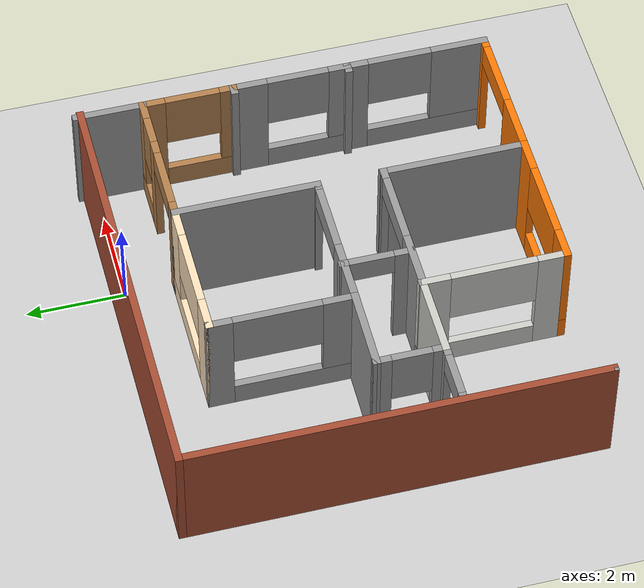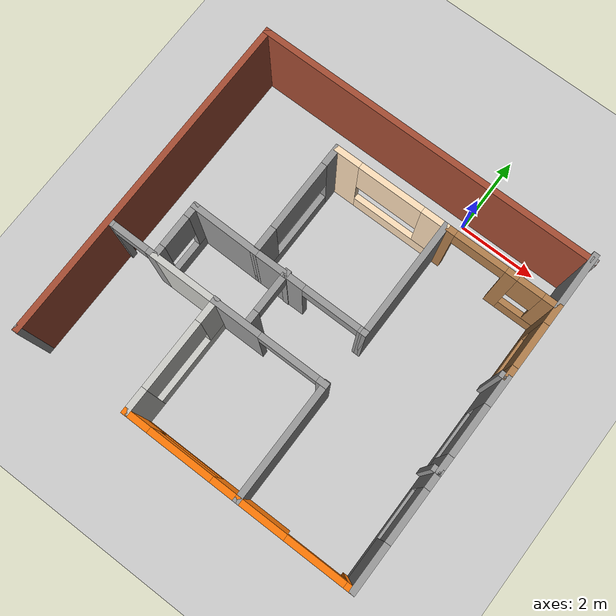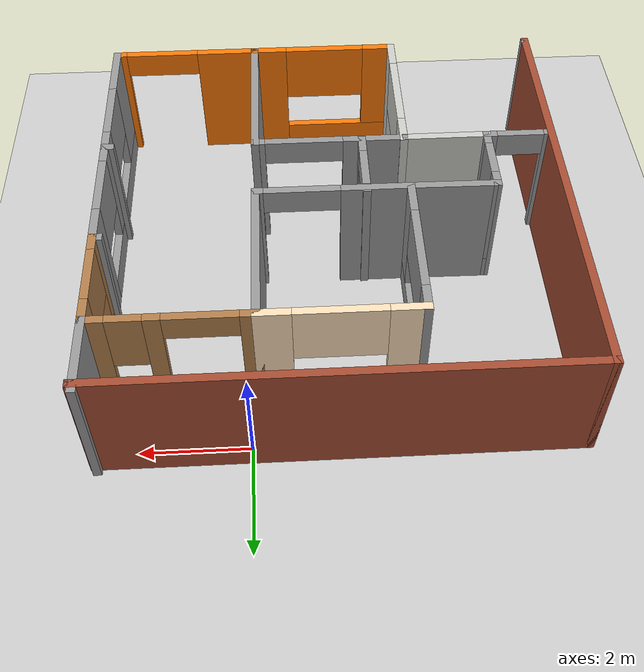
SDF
<sdf version="1.6">
 <world name="default">
  <model name="ground_plane">
   <static>1</static>
   <link name="link">
    <collision name="collision">
     <geometry><plane><normal>0 0 1</normal><size>100 100</size></plane></geometry>
     <surface>
      <contact><collide_bitmask>65535</collide_bitmask></contact>
      <friction><ode><mu>100</mu><mu2>50</mu2></ode></friction>
     </surface>
    </collision>
    <visual name="visual">
     <cast_shadows>0</cast_shadows>
     <geometry><plane><normal>0 0 1</normal><size>100 100</size></plane></geometry>
     <material>
      <script><uri>file://media/materials/scripts/gazebo.material</uri><name>Gazebo/Grey</name></script>
     </material>
    </visual>
   </link>
  </model>
  <model name="MyHome">
   <pose>-1.58 -3.915 0 0 -0 0</pose>
   <link name="Wall_0">
    <pose>-0.025 2.875 0 0 -0 0</pose>
    <visual name="Wall_0_Visual_0">
     <pose>-1.14611 0 1.25 0 -0 0</pose>
     <geometry><box><size>0.707769 0.15 2.5</size></box></geometry>
     <material>
      <script><uri>file://media/materials/scripts/gazebo.material</uri><name>Gazebo/Grey</name></script>
      <ambient>1 0.878431 0.733333 1</ambient>
     </material>
     <meta><layer>0</layer></meta>
    </visual>
    <collision name="Wall_0_Collision_0">
     <geometry><box><size>0.707769 0.15 2.5</size></box></geometry>
     <pose>-1.14611 0 1.25 0 -0 0</pose>
    </collision>
    <visual name="Wall_0_Visual_1">
     <pose>0.353885 0 0.25 0 -0 0</pose>
     <geometry><box><size>2.29223 0.15 0.5</size></box></geometry>
     <material>
      <script><uri>file://media/materials/scripts/gazebo.material</uri><name>Gazebo/Grey</name></script>
      <ambient>1 0.878431 0.733333 1</ambient>
     </material>
     <meta><layer>0</layer></meta>
    </visual>
    <collision name="Wall_0_Collision_1">
     <geometry><box><size>2.29223 0.15 0.5</size></box></geometry>
     <pose>0.353885 0 0.25 0 -0 0</pose>
    </collision>
    <visual name="Wall_0_Visual_2">
     <pose>1.16841 0 1.5 0 -0 0</pose>
     <geometry><box><size>0.663189 0.15 2</size></box></geometry>
     <material>
      <script><uri>file://media/materials/scripts/gazebo.material</uri><name>Gazebo/Grey</name></script>
      <ambient>1 0.878431 0.733333 1</ambient>
     </material>
     <meta><layer>0</layer></meta>
    </visual>
    <collision name="Wall_0_Collision_2">
     <geometry><box><size>0.663189 0.15 2</size></box></geometry>
     <pose>1.16841 0 1.5 0 -0 0</pose>
    </collision>
    <visual name="Wall_0_Visual_3">
     <pose>0.02229 0 1.9 0 -0 0</pose>
     <geometry><box><size>1.62904 0.15 1.2</size></box></geometry>
     <material>
      <script><uri>file://media/materials/scripts/gazebo.material</uri><name>Gazebo/Grey</name></script>
      <ambient>1 0.878431 0.733333 1</ambient>
     </material>
     <meta><layer>0</layer></meta>
    </visual>
    <collision name="Wall_0_Collision_3">
     <geometry><box><size>1.62904 0.15 1.2</size></box></geometry>
     <pose>0.02229 0 1.9 0 -0 0</pose>
    </collision>
   </link>
   <link name="Wall_11">
    <collision name="Wall_11_Collision">
     <geometry><box><size>0.25 0.15 2.5</size></box></geometry>
     <pose>0 0 1.25 0 -0 0</pose>
    </collision>
    <visual name="Wall_11_Visual">
     <pose>0 0 1.25 0 -0 0</pose>
     <geometry><box><size>0.25 0.15 2.5</size></box></geometry>
     <material>
      <script><uri>file://media/materials/scripts/gazebo.material</uri><name>Gazebo/Grey</name></script>
      <ambient>1 1 1 1</ambient>
     </material>
     <meta><layer>0</layer></meta>
    </visual>
    <pose>4.2 1.025 0 0 -0 3.14159</pose>
   </link>
   <link name="Wall_13">
    <pose>4.25 -0.15 0 0 0 -1.5708</pose>
    <visual name="Wall_13_Visual_0">
     <pose>-0.866536 0 1.25 0 -0 0</pose>
     <geometry><box><size>0.766927 0.15 2.5</size></box></geometry>
     <material>
      <script><uri>file://media/materials/scripts/gazebo.material</uri><name>Gazebo/Grey</name></script>
      <ambient>1 1 1 1</ambient>
     </material>
     <meta><layer>0</layer></meta>
    </visual>
    <collision name="Wall_13_Collision_0">
     <geometry><box><size>0.766927 0.15 2.5</size></box></geometry>
     <pose>-0.866536 0 1.25 0 -0 0</pose>
    </collision>
    <visual name="Wall_13_Visual_1">
     <pose>0.383464 0 0.25 0 -0 0</pose>
     <geometry><box><size>1.73307 0.15 0.5</size></box></geometry>
     <material>
      <script><uri>file://media/materials/scripts/gazebo.material</uri><name>Gazebo/Grey</name></script>
      <ambient>1 1 1 1</ambient>
     </material>
     <meta><layer>0</layer></meta>
    </visual>
    <collision name="Wall_13_Collision_1">
     <geometry><box><size>1.73307 0.15 0.5</size></box></geometry>
     <pose>0.383464 0 0.25 0 -0 0</pose>
    </collision>
    <visual name="Wall_13_Visual_2">
     <pose>1.01502 0 1.5 0 -0 0</pose>
     <geometry><box><size>0.469953 0.15 2</size></box></geometry>
     <material>
      <script><uri>file://media/materials/scripts/gazebo.material</uri><name>Gazebo/Grey</name></script>
      <ambient>1 1 1 1</ambient>
     </material>
     <meta><layer>0</layer></meta>
    </visual>
    <collision name="Wall_13_Collision_2">
     <geometry><box><size>0.469953 0.15 2</size></box></geometry>
     <pose>1.01502 0 1.5 0 -0 0</pose>
    </collision>
    <visual name="Wall_13_Visual_3">
     <pose>0.148487 0 1.9 0 -0 0</pose>
     <geometry><box><size>1.26312 0.15 1.2</size></box></geometry>
     <material>
      <script><uri>file://media/materials/scripts/gazebo.material</uri><name>Gazebo/Grey</name></script>
      <ambient>1 1 1 1</ambient>
     </material>
     <meta><layer>0</layer></meta>
    </visual>
    <collision name="Wall_13_Collision_3">
     <geometry><box><size>1.26312 0.15 1.2</size></box></geometry>
     <pose>0.148487 0 1.9 0 -0 0</pose>
    </collision>
   </link>
   <link name="Wall_14">
    <collision name="Wall_14_Collision">
     <geometry><box><size>0.25 0.15 2.5</size></box></geometry>
     <pose>0 0 1.25 0 -0 0</pose>
    </collision>
    <visual name="Wall_14_Visual">
     <pose>0 0 1.25 0 -0 0</pose>
     <geometry><box><size>0.25 0.15 2.5</size></box></geometry>
     <material>
      <script><uri>file://media/materials/scripts/gazebo.material</uri><name>Gazebo/Grey</name></script>
      <ambient>1 1 1 1</ambient>
     </material>
     <meta><layer>0</layer></meta>
    </visual>
    <pose>4.2 -1.325 0 0 -0 3.14159</pose>
   </link>
   <link name="Wall_16">
    <pose>4.25 -2.75 0 0 0 -1.5708</pose>
    <visual name="Wall_16_Visual_0">
     <pose>-1.24918 0 1.25 0 -0 0</pose>
     <geometry><box><size>0.501638 0.15 2.5</size></box></geometry>
     <material>
      <script><uri>file://media/materials/scripts/gazebo.material</uri><name>Gazebo/Grey</name></script>
      <ambient>1 1 1 1</ambient>
     </material>
     <meta><layer>0</layer></meta>
    </visual>
    <collision name="Wall_16_Collision_0">
     <geometry><box><size>0.501638 0.15 2.5</size></box></geometry>
     <pose>-1.24918 0 1.25 0 -0 0</pose>
    </collision>
    <visual name="Wall_16_Visual_1">
     <pose>0.250819 0 0.25 0 -0 0</pose>
     <geometry><box><size>2.49836 0.15 0.5</size></box></geometry>
     <material>
      <script><uri>file://media/materials/scripts/gazebo.material</uri><name>Gazebo/Grey</name></script>
      <ambient>1 1 1 1</ambient>
     </material>
     <meta><layer>0</layer></meta>
    </visual>
    <collision name="Wall_16_Collision_1">
     <geometry><box><size>2.49836 0.15 0.5</size></box></geometry>
     <pose>0.250819 0 0.25 0 -0 0</pose>
    </collision>
    <visual name="Wall_16_Visual_2">
     <pose>0.905819 0 1.5 0 -0 0</pose>
     <geometry><box><size>1.18836 0.15 2</size></box></geometry>
     <material>
      <script><uri>file://media/materials/scripts/gazebo.material</uri><name>Gazebo/Grey</name></script>
      <ambient>1 1 1 1</ambient>
     </material>
     <meta><layer>0</layer></meta>
    </visual>
    <collision name="Wall_16_Collision_2">
     <geometry><box><size>1.18836 0.15 2</size></box></geometry>
     <pose>0.905819 0 1.5 0 -0 0</pose>
    </collision>
    <visual name="Wall_16_Visual_3">
     <pose>-0.343362 0 1.9 0 -0 0</pose>
     <geometry><box><size>1.31 0.15 1.2</size></box></geometry>
     <material>
      <script><uri>file://media/materials/scripts/gazebo.material</uri><name>Gazebo/Grey</name></script>
      <ambient>1 1 1 1</ambient>
     </material>
     <meta><layer>0</layer></meta>
    </visual>
    <collision name="Wall_16_Collision_3">
     <geometry><box><size>1.31 0.15 1.2</size></box></geometry>
     <pose>-0.343362 0 1.9 0 -0 0</pose>
    </collision>
   </link>
   <link name="Wall_18">
    <pose>2.825 -4.175 0 0 -0 3.14159</pose>
    <visual name="Wall_18_Visual_0">
     <pose>-1.36366 0 1.25 0 -0 0</pose>
     <geometry><box><size>0.272669 0.15 2.5</size></box></geometry>
     <material>
      <script><uri>file://media/materials/scripts/gazebo.material</uri><name>Gazebo/Grey</name></script>
      <ambient>0.996078 0.47451 0.0196078 1</ambient>
     </material>
     <meta><layer>0</layer></meta>
    </visual>
    <collision name="Wall_18_Collision_0">
     <geometry><box><size>0.272669 0.15 2.5</size></box></geometry>
     <pose>-1.36366 0 1.25 0 -0 0</pose>
    </collision>
    <visual name="Wall_18_Visual_1">
     <pose>0.866335 0 1.25 0 -0 0</pose>
     <geometry><box><size>1.26733 0.15 2.5</size></box></geometry>
     <material>
      <script><uri>file://media/materials/scripts/gazebo.material</uri><name>Gazebo/Grey</name></script>
      <ambient>0.996078 0.47451 0.0196078 1</ambient>
     </material>
     <meta><layer>0</layer></meta>
    </visual>
    <collision name="Wall_18_Collision_1">
     <geometry><box><size>1.26733 0.15 2.5</size></box></geometry>
     <pose>0.866335 0 1.25 0 -0 0</pose>
    </collision>
    <visual name="Wall_18_Visual_2">
     <pose>-0.497331 0 2.25 0 -0 0</pose>
     <geometry><box><size>1.46 0.15 0.5</size></box></geometry>
     <material>
      <script><uri>file://media/materials/scripts/gazebo.material</uri><name>Gazebo/Grey</name></script>
      <ambient>0.996078 0.47451 0.0196078 1</ambient>
     </material>
     <meta><layer>0</layer></meta>
    </visual>
    <collision name="Wall_18_Collision_2">
     <geometry><box><size>1.46 0.15 0.5</size></box></geometry>
     <pose>-0.497331 0 2.25 0 -0 0</pose>
    </collision>
   </link>
   <link name="Wall_2">
    <pose>-1.45 1.45 0 0 0 -1.5708</pose>
    <visual name="Wall_2_Visual_0">
     <pose>-1.23642 0 1.25 0 -0 0</pose>
     <geometry><box><size>0.527169 0.15 2.5</size></box></geometry>
     <material>
      <script><uri>file://media/materials/scripts/gazebo.material</uri><name>Gazebo/Grey</name></script>
      <ambient>0.529412 0.529412 0.529412 1</ambient>
     </material>
     <meta><layer>0</layer></meta>
    </visual>
    <collision name="Wall_2_Collision_0">
     <geometry><box><size>0.527169 0.15 2.5</size></box></geometry>
     <pose>-1.23642 0 1.25 0 -0 0</pose>
    </collision>
    <visual name="Wall_2_Visual_1">
     <pose>0.263585 0 0.25 0 -0 0</pose>
     <geometry><box><size>2.47283 0.15 0.5</size></box></geometry>
     <material>
      <script><uri>file://media/materials/scripts/gazebo.material</uri><name>Gazebo/Grey</name></script>
      <ambient>0.529412 0.529412 0.529412 1</ambient>
     </material>
     <meta><layer>0</layer></meta>
    </visual>
    <collision name="Wall_2_Collision_1">
     <geometry><box><size>2.47283 0.15 0.5</size></box></geometry>
     <pose>0.263585 0 0.25 0 -0 0</pose>
    </collision>
    <visual name="Wall_2_Visual_2">
     <pose>1.14386 0 1.5 0 -0 0</pose>
     <geometry><box><size>0.712285 0.15 2</size></box></geometry>
     <material>
      <script><uri>file://media/materials/scripts/gazebo.material</uri><name>Gazebo/Grey</name></script>
      <ambient>0.529412 0.529412 0.529412 1</ambient>
     </material>
     <meta><layer>0</layer></meta>
    </visual>
    <collision name="Wall_2_Collision_2">
     <geometry><box><size>0.712285 0.15 2</size></box></geometry>
     <pose>1.14386 0 1.5 0 -0 0</pose>
    </collision>
    <visual name="Wall_2_Visual_3">
     <pose>-0.092558 0 1.9 0 -0 0</pose>
     <geometry><box><size>1.76055 0.15 1.2</size></box></geometry>
     <material>
      <script><uri>file://media/materials/scripts/gazebo.material</uri><name>Gazebo/Grey</name></script>
      <ambient>0.529412 0.529412 0.529412 1</ambient>
     </material>
     <meta><layer>0</layer></meta>
    </visual>
    <collision name="Wall_2_Collision_3">
     <geometry><box><size>1.76055 0.15 1.2</size></box></geometry>
     <pose>-0.092558 0 1.9 0 -0 0</pose>
    </collision>
   </link>
   <link name="Wall_20">
    <collision name="Wall_20_Collision">
     <geometry><box><size>0.15 0.15 2.5</size></box></geometry>
     <pose>0 0 1.25 0 -0 0</pose>
    </collision>
    <visual name="Wall_20_Visual">
     <pose>0 0 1.25 0 -0 0</pose>
     <geometry><box><size>0.15 0.15 2.5</size></box></geometry>
     <material>
      <script><uri>file://media/materials/scripts/gazebo.material</uri><name>Gazebo/Grey</name></script>
      <ambient>1 1 1 1</ambient>
     </material>
     <meta><layer>0</layer></meta>
    </visual>
    <pose>1.4 -4.175 0 0 -0 0</pose>
   </link>
   <link name="Wall_22">
    <pose>-0.025 -4.175 0 0 -0 3.14159</pose>
    <visual name="Wall_22_Visual_0">
     <pose>-1.13467 0 1.25 0 -0 0</pose>
     <geometry><box><size>0.73066 0.15 2.5</size></box></geometry>
     <material>
      <script><uri>file://media/materials/scripts/gazebo.material</uri><name>Gazebo/Grey</name></script>
      <ambient>0.996078 0.47451 0.0196078 1</ambient>
     </material>
     <meta><layer>0</layer></meta>
    </visual>
    <collision name="Wall_22_Collision_0">
     <geometry><box><size>0.73066 0.15 2.5</size></box></geometry>
     <pose>-1.13467 0 1.25 0 -0 0</pose>
    </collision>
    <visual name="Wall_22_Visual_1">
     <pose>0.36533 0 0.25 0 -0 0</pose>
     <geometry><box><size>2.26934 0.15 0.5</size></box></geometry>
     <material>
      <script><uri>file://media/materials/scripts/gazebo.material</uri><name>Gazebo/Grey</name></script>
      <ambient>0.996078 0.47451 0.0196078 1</ambient>
     </material>
     <meta><layer>0</layer></meta>
    </visual>
    <collision name="Wall_22_Collision_1">
     <geometry><box><size>2.26934 0.15 0.5</size></box></geometry>
     <pose>0.36533 0 0.25 0 -0 0</pose>
    </collision>
    <visual name="Wall_22_Visual_2">
     <pose>1.16533 0 1.5 0 -0 0</pose>
     <geometry><box><size>0.66934 0.15 2</size></box></geometry>
     <material>
      <script><uri>file://media/materials/scripts/gazebo.material</uri><name>Gazebo/Grey</name></script>
      <ambient>0.996078 0.47451 0.0196078 1</ambient>
     </material>
     <meta><layer>0</layer></meta>
    </visual>
    <collision name="Wall_22_Collision_2">
     <geometry><box><size>0.66934 0.15 2</size></box></geometry>
     <pose>1.16533 0 1.5 0 -0 0</pose>
    </collision>
    <visual name="Wall_22_Visual_3">
     <pose>0.03066 0 1.9 0 -0 0</pose>
     <geometry><box><size>1.6 0.15 1.2</size></box></geometry>
     <material>
      <script><uri>file://media/materials/scripts/gazebo.material</uri><name>Gazebo/Grey</name></script>
      <ambient>0.996078 0.47451 0.0196078 1</ambient>
     </material>
     <meta><layer>0</layer></meta>
    </visual>
    <collision name="Wall_22_Collision_3">
     <geometry><box><size>1.6 0.15 1.2</size></box></geometry>
     <pose>0.03066 0 1.9 0 -0 0</pose>
    </collision>
   </link>
   <link name="Wall_24">
    <pose>-1.45 -2.73479 0 0 -0 1.5708</pose>
    <visual name="Wall_24_Visual_0">
     <pose>-1.18374 0 1.25 0 -0 0</pose>
     <geometry><box><size>0.662934 0.15 2.5</size></box></geometry>
     <material>
      <script><uri>file://media/materials/scripts/gazebo.material</uri><name>Gazebo/CeilingTiled</name></script>
      <ambient>1 1 1 1</ambient>
     </material>
     <meta><layer>0</layer></meta>
    </visual>
    <collision name="Wall_24_Collision_0">
     <geometry><box><size>0.662934 0.15 2.5</size></box></geometry>
     <pose>-1.18374 0 1.25 0 -0 0</pose>
    </collision>
    <visual name="Wall_24_Visual_1">
     <pose>0.331467 0 0.25 0 -0 0</pose>
     <geometry><box><size>2.36748 0.15 0.5</size></box></geometry>
     <material>
      <script><uri>file://media/materials/scripts/gazebo.material</uri><name>Gazebo/CeilingTiled</name></script>
      <ambient>1 1 1 1</ambient>
     </material>
     <meta><layer>0</layer></meta>
    </visual>
    <collision name="Wall_24_Collision_1">
     <geometry><box><size>2.36748 0.15 0.5</size></box></geometry>
     <pose>0.331467 0 0.25 0 -0 0</pose>
    </collision>
    <visual name="Wall_24_Visual_2">
     <pose>1.19647 0 1.5 0 -0 0</pose>
     <geometry><box><size>0.637483 0.15 2</size></box></geometry>
     <material>
      <script><uri>file://media/materials/scripts/gazebo.material</uri><name>Gazebo/CeilingTiled</name></script>
      <ambient>1 1 1 1</ambient>
     </material>
     <meta><layer>0</layer></meta>
    </visual>
    <collision name="Wall_24_Collision_2">
     <geometry><box><size>0.637483 0.15 2</size></box></geometry>
     <pose>1.19647 0 1.5 0 -0 0</pose>
    </collision>
    <visual name="Wall_24_Visual_3">
     <pose>0.012725 0 1.9 0 -0 0</pose>
     <geometry><box><size>1.73 0.15 1.2</size></box></geometry>
     <material>
      <script><uri>file://media/materials/scripts/gazebo.material</uri><name>Gazebo/CeilingTiled</name></script>
      <ambient>1 1 1 1</ambient>
     </material>
     <meta><layer>0</layer></meta>
    </visual>
    <collision name="Wall_24_Collision_3">
     <geometry><box><size>1.73 0.15 1.2</size></box></geometry>
     <pose>0.012725 0 1.9 0 -0 0</pose>
    </collision>
   </link>
   <link name="Wall_25">
    <collision name="Wall_25_Collision">
     <geometry><box><size>0.15 0.15 2.5</size></box></geometry>
     <pose>0 0 1.25 0 -0 0</pose>
    </collision>
    <visual name="Wall_25_Visual">
     <pose>0 0 1.25 0 -0 0</pose>
     <geometry><box><size>0.15 0.15 2.5</size></box></geometry>
     <material>
      <script><uri>file://media/materials/scripts/gazebo.material</uri><name>Gazebo/Grey</name></script>
      <ambient>1 1 1 1</ambient>
     </material>
     <meta><layer>0</layer></meta>
    </visual>
    <pose>-1.45 -1.29458 0 0 -0 0</pose>
   </link>
   <link name="Wall_26">
    <pose>-0.025 -1.30979 0 0 -0 0</pose>
    <visual name="Wall_26_Visual_0">
     <pose>-0.875794 0 1.25 0 -0 0</pose>
     <geometry><box><size>1.24841 0.15 2.5</size></box></geometry>
     <material>
      <script><uri>file://media/materials/scripts/gazebo.material</uri><name>Gazebo/Grey</name></script>
      <ambient>1 1 1 1</ambient>
     </material>
     <meta><layer>0</layer></meta>
    </visual>
    <collision name="Wall_26_Collision_0">
     <geometry><box><size>1.24841 0.15 2.5</size></box></geometry>
     <pose>-0.875794 0 1.25 0 -0 0</pose>
    </collision>
    <visual name="Wall_26_Visual_1">
     <pose>1.36921 0 1.25 0 -0 0</pose>
     <geometry><box><size>0.261588 0.15 2.5</size></box></geometry>
     <material>
      <script><uri>file://media/materials/scripts/gazebo.material</uri><name>Gazebo/Grey</name></script>
      <ambient>1 1 1 1</ambient>
     </material>
     <meta><layer>0</layer></meta>
    </visual>
    <collision name="Wall_26_Collision_1">
     <geometry><box><size>0.261588 0.15 2.5</size></box></geometry>
     <pose>1.36921 0 1.25 0 -0 0</pose>
    </collision>
    <visual name="Wall_26_Visual_2">
     <pose>0.493412 0 2.25 0 -0 0</pose>
     <geometry><box><size>1.49 0.15 0.5</size></box></geometry>
     <material>
      <script><uri>file://media/materials/scripts/gazebo.material</uri><name>Gazebo/Grey</name></script>
      <ambient>1 1 1 1</ambient>
     </material>
     <meta><layer>0</layer></meta>
    </visual>
    <collision name="Wall_26_Collision_2">
     <geometry><box><size>1.49 0.15 0.5</size></box></geometry>
     <pose>0.493412 0 2.25 0 -0 0</pose>
    </collision>
   </link>
   <link name="Wall_27">
    <collision name="Wall_27_Collision">
     <geometry><box><size>3.03042 0.15 2.5</size></box></geometry>
     <pose>0 0 1.25 0 -0 0</pose>
    </collision>
    <visual name="Wall_27_Visual">
     <pose>0 0 1.25 0 -0 0</pose>
     <geometry><box><size>3.03042 0.15 2.5</size></box></geometry>
     <material>
      <script><uri>file://media/materials/scripts/gazebo.material</uri><name>Gazebo/Grey</name></script>
      <ambient>1 1 1 1</ambient>
     </material>
     <meta><layer>0</layer></meta>
    </visual>
    <pose>1.4 -2.73479 0 0 0 -1.5708</pose>
   </link>
   <link name="Wall_3">
    <pose>-0.025 0.025 0 0 -0 0</pose>
    <visual name="Wall_3_Visual_0">
     <pose>-0.816671 0 1.25 0 -0 0</pose>
     <geometry><box><size>1.36666 0.15 2.5</size></box></geometry>
     <material>
      <script><uri>file://media/materials/scripts/gazebo.material</uri><name>Gazebo/Grey</name></script>
      <ambient>1 1 1 1</ambient>
     </material>
     <meta><layer>0</layer></meta>
    </visual>
    <collision name="Wall_3_Collision_0">
     <geometry><box><size>1.36666 0.15 2.5</size></box></geometry>
     <pose>-0.816671 0 1.25 0 -0 0</pose>
    </collision>
    <visual name="Wall_3_Visual_1">
     <pose>1.39333 0 1.25 0 -0 0</pose>
     <geometry><box><size>0.213342 0.15 2.5</size></box></geometry>
     <material>
      <script><uri>file://media/materials/scripts/gazebo.material</uri><name>Gazebo/Grey</name></script>
      <ambient>1 1 1 1</ambient>
     </material>
     <meta><layer>0</layer></meta>
    </visual>
    <collision name="Wall_3_Collision_1">
     <geometry><box><size>0.213342 0.15 2.5</size></box></geometry>
     <pose>1.39333 0 1.25 0 -0 0</pose>
    </collision>
    <visual name="Wall_3_Visual_2">
     <pose>0.576658 0 2.25 0 -0 0</pose>
     <geometry><box><size>1.42 0.15 0.5</size></box></geometry>
     <material>
      <script><uri>file://media/materials/scripts/gazebo.material</uri><name>Gazebo/Grey</name></script>
      <ambient>1 1 1 1</ambient>
     </material>
     <meta><layer>0</layer></meta>
    </visual>
    <collision name="Wall_3_Collision_2">
     <geometry><box><size>1.42 0.15 0.5</size></box></geometry>
     <pose>0.576658 0 2.25 0 -0 0</pose>
    </collision>
   </link>
   <link name="Wall_35">
    <collision name="Wall_35_Collision">
     <geometry><box><size>1.75 0.15 2.5</size></box></geometry>
     <pose>0 0 1.25 0 -0 0</pose>
    </collision>
    <visual name="Wall_35_Visual">
     <pose>0 0 1.25 0 -0 0</pose>
     <geometry><box><size>1.75 0.15 2.5</size></box></geometry>
     <material>
      <script><uri>file://media/materials/scripts/gazebo.material</uri><name>Gazebo/CeilingTiled</name></script>
      <ambient>1 1 1 1</ambient>
     </material>
     <meta><layer>0</layer></meta>
    </visual>
    <pose>-2.25 -1.30979 0 0 -0 3.14159</pose>
   </link>
   <link name="Wall_36">
    <pose>-3.05 -0.634791 0 0 -0 1.5708</pose>
    <visual name="Wall_36_Visual_0">
     <pose>-0.584129 0 1.25 0 -0 0</pose>
     <geometry><box><size>0.331742 0.15 2.5</size></box></geometry>
     <material>
      <script><uri>file://media/materials/scripts/gazebo.material</uri><name>Gazebo/Grey</name></script>
      <ambient>1 1 1 1</ambient>
     </material>
     <meta><layer>0</layer></meta>
    </visual>
    <collision name="Wall_36_Collision_0">
     <geometry><box><size>0.331742 0.15 2.5</size></box></geometry>
     <pose>-0.584129 0 1.25 0 -0 0</pose>
    </collision>
    <visual name="Wall_36_Visual_1">
     <pose>0.165871 0 0.25 0 -0 0</pose>
     <geometry><box><size>1.16826 0.15 0.5</size></box></geometry>
     <material>
      <script><uri>file://media/materials/scripts/gazebo.material</uri><name>Gazebo/Grey</name></script>
      <ambient>1 1 1 1</ambient>
     </material>
     <meta><layer>0</layer></meta>
    </visual>
    <collision name="Wall_36_Collision_1">
     <geometry><box><size>1.16826 0.15 0.5</size></box></geometry>
     <pose>0.165871 0 0.25 0 -0 0</pose>
    </collision>
    <visual name="Wall_36_Visual_2">
     <pose>0.565871 0 1.5 0 -0 0</pose>
     <geometry><box><size>0.368258 0.15 2</size></box></geometry>
     <material>
      <script><uri>file://media/materials/scripts/gazebo.material</uri><name>Gazebo/Grey</name></script>
      <ambient>1 1 1 1</ambient>
     </material>
     <meta><layer>0</layer></meta>
    </visual>
    <collision name="Wall_36_Collision_2">
     <geometry><box><size>0.368258 0.15 2</size></box></geometry>
     <pose>0.565871 0 1.5 0 -0 0</pose>
    </collision>
    <visual name="Wall_36_Visual_3">
     <pose>-0.018258 0 1.9 0 -0 0</pose>
     <geometry><box><size>0.8 0.15 1.2</size></box></geometry>
     <material>
      <script><uri>file://media/materials/scripts/gazebo.material</uri><name>Gazebo/Grey</name></script>
      <ambient>1 1 1 1</ambient>
     </material>
     <meta><layer>0</layer></meta>
    </visual>
    <collision name="Wall_36_Collision_3">
     <geometry><box><size>0.8 0.15 1.2</size></box></geometry>
     <pose>-0.018258 0 1.9 0 -0 0</pose>
    </collision>
   </link>
   <link name="Wall_38">
    <collision name="Wall_38_Collision">
     <geometry><box><size>1.75 0.15 2.5</size></box></geometry>
     <pose>0 0 1.25 0 -0 0</pose>
    </collision>
    <visual name="Wall_38_Visual">
     <pose>0 0 1.25 0 -0 0</pose>
     <geometry><box><size>1.75 0.15 2.5</size></box></geometry>
     <material>
      <script><uri>file://media/materials/scripts/gazebo.material</uri><name>Gazebo/Grey</name></script>
      <ambient>1 1 1 1</ambient>
     </material>
     <meta><layer>0</layer></meta>
    </visual>
    <pose>-2.25 0.032605 0 0 -0 3.13209</pose>
   </link>
   <link name="Wall_4">
    <collision name="Wall_4_Collision">
     <geometry><box><size>0.15 0.15 2.5</size></box></geometry>
     <pose>0 0 1.25 0 -0 0</pose>
    </collision>
    <visual name="Wall_4_Visual">
     <pose>0 0 1.25 0 -0 0</pose>
     <geometry><box><size>0.15 0.15 2.5</size></box></geometry>
     <material>
      <script><uri>file://media/materials/scripts/gazebo.material</uri><name>Gazebo/Grey</name></script>
      <ambient>1 1 1 1</ambient>
     </material>
     <meta><layer>0</layer></meta>
    </visual>
    <pose>1.4 0.025 0 0 -0 0</pose>
   </link>
   <link name="Wall_40">
    <pose>-0.639821 -0.613584 0 0 0 -1.5708</pose>
    <visual name="Wall_40_Visual_0">
     <pose>-0.650543 0 1.25 0 -0 0</pose>
     <geometry><box><size>0.198913 0.15 2.5</size></box></geometry>
     <material>
      <script><uri>file://media/materials/scripts/gazebo.material</uri><name>Gazebo/Grey</name></script>
      <ambient>1 1 1 1</ambient>
     </material>
     <meta><layer>0</layer></meta>
    </visual>
    <collision name="Wall_40_Collision_0">
     <geometry><box><size>0.198913 0.15 2.5</size></box></geometry>
     <pose>-0.650543 0 1.25 0 -0 0</pose>
    </collision>
    <visual name="Wall_40_Visual_1">
     <pose>0.549457 0 1.25 0 -0 0</pose>
     <geometry><box><size>0.401087 0.15 2.5</size></box></geometry>
     <material>
      <script><uri>file://media/materials/scripts/gazebo.material</uri><name>Gazebo/Grey</name></script>
      <ambient>1 1 1 1</ambient>
     </material>
     <meta><layer>0</layer></meta>
    </visual>
    <collision name="Wall_40_Collision_1">
     <geometry><box><size>0.401087 0.15 2.5</size></box></geometry>
     <pose>0.549457 0 1.25 0 -0 0</pose>
    </collision>
    <visual name="Wall_40_Visual_2">
     <pose>-0.101087 0 2.25 0 -0 0</pose>
     <geometry><box><size>0.9 0.15 0.5</size></box></geometry>
     <material>
      <script><uri>file://media/materials/scripts/gazebo.material</uri><name>Gazebo/Grey</name></script>
      <ambient>1 1 1 1</ambient>
     </material>
     <meta><layer>0</layer></meta>
    </visual>
    <collision name="Wall_40_Collision_2">
     <geometry><box><size>0.9 0.15 0.5</size></box></geometry>
     <pose>-0.101087 0 2.25 0 -0 0</pose>
    </collision>
   </link>
   <link name="Wall_45">
    <collision name="Wall_45_Collision">
     <geometry><box><size>8.5 0.15 2.5</size></box></geometry>
     <pose>0 0 1.25 0 -0 0</pose>
    </collision>
    <visual name="Wall_45_Visual">
     <pose>0 0 1.25 0 -0 0</pose>
     <geometry><box><size>8.5 0.15 2.5</size></box></geometry>
     <material>
      <script><uri>file://media/materials/scripts/gazebo.material</uri><name>Gazebo/Bricks</name></script>
      <ambient>1 1 1 1</ambient>
     </material>
     <meta><layer>0</layer></meta>
    </visual>
    <pose>-4.3 -0.05 0 0 0 -1.5708</pose>
   </link>
   <link name="Wall_46">
    <collision name="Wall_46_Collision">
     <geometry><box><size>0.15 0.15 2.5</size></box></geometry>
     <pose>0 0 1.25 0 -0 0</pose>
    </collision>
    <visual name="Wall_46_Visual">
     <pose>0 0 1.25 0 -0 0</pose>
     <geometry><box><size>0.15 0.15 2.5</size></box></geometry>
     <material>
      <script><uri>file://media/materials/scripts/gazebo.material</uri><name>Gazebo/Grey</name></script>
      <ambient>1 1 1 1</ambient>
     </material>
     <meta><layer>0</layer></meta>
    </visual>
    <pose>-4.3 -4.225 0 0 -0 0</pose>
   </link>
   <link name="Wall_49">
    <pose>-3.6 -1.30979 0 0 -0 3.14159</pose>
    <visual name="Wall_49_Visual_0">
     <pose>-0.48744 0 1.25 0 -0 0</pose>
     <geometry><box><size>0.27512 0.15 2.5</size></box></geometry>
     <material>
      <script><uri>file://media/materials/scripts/gazebo.material</uri><name>Gazebo/Grey</name></script>
      <ambient>1 1 1 1</ambient>
     </material>
     <meta><layer>0</layer></meta>
    </visual>
    <collision name="Wall_49_Collision_0">
     <geometry><box><size>0.27512 0.15 2.5</size></box></geometry>
     <pose>-0.48744 0 1.25 0 -0 0</pose>
    </collision>
    <visual name="Wall_49_Visual_1">
     <pose>0.58756 0 1.25 0 -0 0</pose>
     <geometry><box><size>0.07488 0.15 2.5</size></box></geometry>
     <material>
      <script><uri>file://media/materials/scripts/gazebo.material</uri><name>Gazebo/Grey</name></script>
      <ambient>1 1 1 1</ambient>
     </material>
     <meta><layer>0</layer></meta>
    </visual>
    <collision name="Wall_49_Collision_1">
     <geometry><box><size>0.07488 0.15 2.5</size></box></geometry>
     <pose>0.58756 0 1.25 0 -0 0</pose>
    </collision>
    <visual name="Wall_49_Visual_2">
     <pose>0.10012 0 2.25 0 -0 0</pose>
     <geometry><box><size>0.9 0.15 0.5</size></box></geometry>
     <material>
      <script><uri>file://media/materials/scripts/gazebo.material</uri><name>Gazebo/Grey</name></script>
      <ambient>1 1 1 1</ambient>
     </material>
     <meta><layer>0</layer></meta>
    </visual>
    <collision name="Wall_49_Collision_2">
     <geometry><box><size>0.9 0.15 0.5</size></box></geometry>
     <pose>0.10012 0 2.25 0 -0 0</pose>
    </collision>
   </link>
   <link name="Wall_5">
    <collision name="Wall_5_Collision">
     <geometry><box><size>3 0.15 2.5</size></box></geometry>
     <pose>0 0 1.25 0 -0 0</pose>
    </collision>
    <visual name="Wall_5_Visual">
     <pose>0 0 1.25 0 -0 0</pose>
     <geometry><box><size>3 0.15 2.5</size></box></geometry>
     <material>
      <script><uri>file://media/materials/scripts/gazebo.material</uri><name>Gazebo/Grey</name></script>
      <ambient>0.529412 0.529412 0.529412 1</ambient>
     </material>
     <meta><layer>0</layer></meta>
    </visual>
    <pose>1.4 1.45 0 0 -0 1.5708</pose>
   </link>
   <link name="Wall_52">
    <collision name="Wall_52_Collision">
     <geometry><box><size>8.75 0.15 2.5</size></box></geometry>
     <pose>0 0 1.25 0 -0 0</pose>
    </collision>
    <visual name="Wall_52_Visual">
     <pose>0 0 1.25 0 -0 0</pose>
     <geometry><box><size>8.75 0.15 2.5</size></box></geometry>
     <material>
      <script><uri>file://media/materials/scripts/gazebo.material</uri><name>Gazebo/Bricks</name></script>
      <ambient>1 1 1 1</ambient>
     </material>
     <meta><layer>0</layer></meta>
    </visual>
    <pose>0 4.125 0 0 -0 0</pose>
   </link>
   <link name="Wall_53">
    <collision name="Wall_53_Collision">
     <geometry><box><size>0.15 0.15 2.5</size></box></geometry>
     <pose>0 0 1.25 0 -0 0</pose>
    </collision>
    <visual name="Wall_53_Visual">
     <pose>0 0 1.25 0 -0 0</pose>
     <geometry><box><size>0.15 0.15 2.5</size></box></geometry>
     <material>
      <script><uri>file://media/materials/scripts/gazebo.material</uri><name>Gazebo/Grey</name></script>
      <ambient>1 1 1 1</ambient>
     </material>
     <meta><layer>0</layer></meta>
    </visual>
    <pose>4.3 4.125 0 0 -0 0</pose>
   </link>
   <link name="Wall_55">
    <collision name="Wall_55_Collision">
     <geometry><box><size>1.5 0.15 2.5</size></box></geometry>
     <pose>0 0 1.25 0 -0 0</pose>
    </collision>
    <visual name="Wall_55_Visual">
     <pose>0 0 1.25 0 -0 0</pose>
     <geometry><box><size>1.5 0.15 2.5</size></box></geometry>
     <material>
      <script><uri>file://media/materials/scripts/gazebo.material</uri><name>Gazebo/Grey</name></script>
      <ambient>1 1 1 1</ambient>
     </material>
     <meta><layer>0</layer></meta>
    </visual>
    <pose>4.25 3.55 0 0 -0 1.5708</pose>
   </link>
   <link name="Wall_7">
    <pose>2.825 2.875 0 0 -0 0</pose>
    <visual name="Wall_7_Visual_0">
     <pose>-1.32901 0 1.25 0 -0 0</pose>
     <geometry><box><size>0.341972 0.15 2.5</size></box></geometry>
     <material>
      <script><uri>file://media/materials/scripts/gazebo.material</uri><name>Gazebo/Wood</name></script>
      <ambient>1 1 1 1</ambient>
     </material>
     <meta><layer>0</layer></meta>
    </visual>
    <collision name="Wall_7_Collision_0">
     <geometry><box><size>0.341972 0.15 2.5</size></box></geometry>
     <pose>-1.32901 0 1.25 0 -0 0</pose>
    </collision>
    <visual name="Wall_7_Visual_1">
     <pose>0.283413 0 1.25 0 -0 0</pose>
     <geometry><box><size>0.302883 0.15 2.5</size></box></geometry>
     <material>
      <script><uri>file://media/materials/scripts/gazebo.material</uri><name>Gazebo/Wood</name></script>
      <ambient>1 1 1 1</ambient>
     </material>
     <meta><layer>0</layer></meta>
    </visual>
    <collision name="Wall_7_Collision_1">
     <geometry><box><size>0.302883 0.15 2.5</size></box></geometry>
     <pose>0.283413 0 1.25 0 -0 0</pose>
    </collision>
    <visual name="Wall_7_Visual_2">
     <pose>0.967427 0 0.25 0 -0 0</pose>
     <geometry><box><size>1.06515 0.15 0.5</size></box></geometry>
     <material>
      <script><uri>file://media/materials/scripts/gazebo.material</uri><name>Gazebo/Wood</name></script>
      <ambient>1 1 1 1</ambient>
     </material>
     <meta><layer>0</layer></meta>
    </visual>
    <collision name="Wall_7_Collision_2">
     <geometry><box><size>1.06515 0.15 0.5</size></box></geometry>
     <pose>0.967427 0 0.25 0 -0 0</pose>
    </collision>
    <visual name="Wall_7_Visual_3">
     <pose>1.27892 0 1.5 0 -0 0</pose>
     <geometry><box><size>0.442161 0.15 2</size></box></geometry>
     <material>
      <script><uri>file://media/materials/scripts/gazebo.material</uri><name>Gazebo/Wood</name></script>
      <ambient>1 1 1 1</ambient>
     </material>
     <meta><layer>0</layer></meta>
    </visual>
    <collision name="Wall_7_Collision_3">
     <geometry><box><size>0.442161 0.15 2</size></box></geometry>
     <pose>1.27892 0 1.5 0 -0 0</pose>
    </collision>
    <visual name="Wall_7_Visual_4">
     <pose>0.746347 0 1.9 0 -0 0</pose>
     <geometry><box><size>0.622984 0.15 1.2</size></box></geometry>
     <material>
      <script><uri>file://media/materials/scripts/gazebo.material</uri><name>Gazebo/Wood</name></script>
      <ambient>1 1 1 1</ambient>
     </material>
     <meta><layer>0</layer></meta>
    </visual>
    <collision name="Wall_7_Collision_4">
     <geometry><box><size>0.622984 0.15 1.2</size></box></geometry>
     <pose>0.746347 0 1.9 0 -0 0</pose>
    </collision>
    <visual name="Wall_7_Visual_5">
     <pose>-0.513028 0 2.25 0 -0 0</pose>
     <geometry><box><size>1.29 0.15 0.5</size></box></geometry>
     <material>
      <script><uri>file://media/materials/scripts/gazebo.material</uri><name>Gazebo/Wood</name></script>
      <ambient>1 1 1 1</ambient>
     </material>
     <meta><layer>0</layer></meta>
    </visual>
    <collision name="Wall_7_Collision_5">
     <geometry><box><size>1.29 0.15 0.5</size></box></geometry>
     <pose>-0.513028 0 2.25 0 -0 0</pose>
    </collision>
   </link>
   <link name="Wall_9">
    <pose>4.25 1.95 0 0 0 -1.5708</pose>
    <visual name="Wall_9_Visual_0">
     <pose>-0.736845 0 1.25 0 -0 0</pose>
     <geometry><box><size>0.526309 0.15 2.5</size></box></geometry>
     <material>
      <script><uri>file://media/materials/scripts/gazebo.material</uri><name>Gazebo/Wood</name></script>
      <ambient>1 1 1 1</ambient>
     </material>
     <meta><layer>0</layer></meta>
    </visual>
    <collision name="Wall_9_Collision_0">
     <geometry><box><size>0.526309 0.15 2.5</size></box></geometry>
     <pose>-0.736845 0 1.25 0 -0 0</pose>
    </collision>
    <visual name="Wall_9_Visual_1">
     <pose>0.263155 0 0.25 0 -0 0</pose>
     <geometry><box><size>1.47369 0.15 0.5</size></box></geometry>
     <material>
      <script><uri>file://media/materials/scripts/gazebo.material</uri><name>Gazebo/Wood</name></script>
      <ambient>1 1 1 1</ambient>
     </material>
     <meta><layer>0</layer></meta>
    </visual>
    <collision name="Wall_9_Collision_1">
     <geometry><box><size>1.47369 0.15 0.5</size></box></geometry>
     <pose>0.263155 0 0.25 0 -0 0</pose>
    </collision>
    <visual name="Wall_9_Visual_2">
     <pose>0.820387 0 1.5 0 -0 0</pose>
     <geometry><box><size>0.359226 0.15 2</size></box></geometry>
     <material>
      <script><uri>file://media/materials/scripts/gazebo.material</uri><name>Gazebo/Wood</name></script>
      <ambient>1 1 1 1</ambient>
     </material>
     <meta><layer>0</layer></meta>
    </visual>
    <collision name="Wall_9_Collision_2">
     <geometry><box><size>0.359226 0.15 2</size></box></geometry>
     <pose>0.820387 0 1.5 0 -0 0</pose>
    </collision>
    <visual name="Wall_9_Visual_3">
     <pose>0.083542 0 1.9 0 -0 0</pose>
     <geometry><box><size>1.11446 0.15 1.2</size></box></geometry>
     <material>
      <script><uri>file://media/materials/scripts/gazebo.material</uri><name>Gazebo/Wood</name></script>
      <ambient>1 1 1 1</ambient>
     </material>
     <meta><layer>0</layer></meta>
    </visual>
    <collision name="Wall_9_Collision_3">
     <geometry><box><size>1.11446 0.15 1.2</size></box></geometry>
     <pose>0.083542 0 1.9 0 -0 0</pose>
    </collision>
   </link>
   <static>1</static>
  </model>
 </world>
</sdf>
